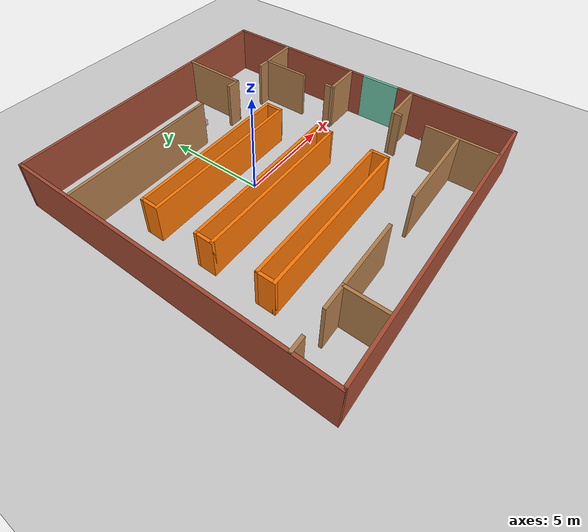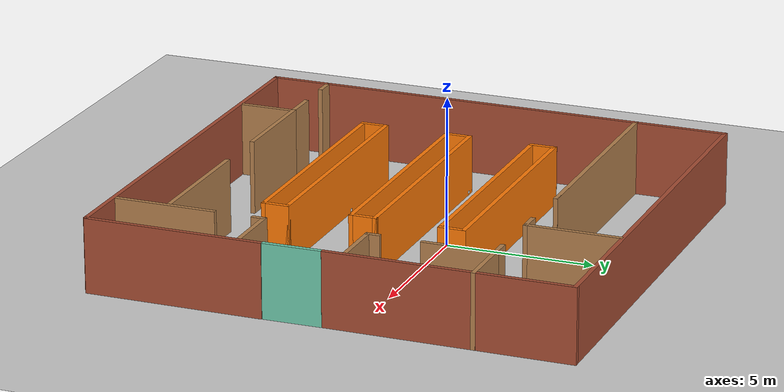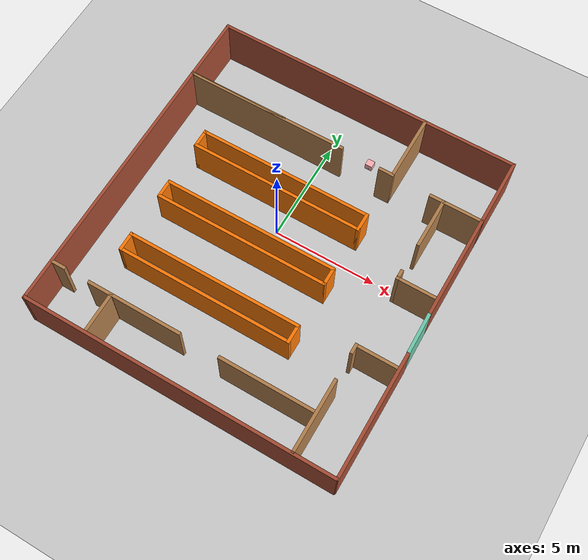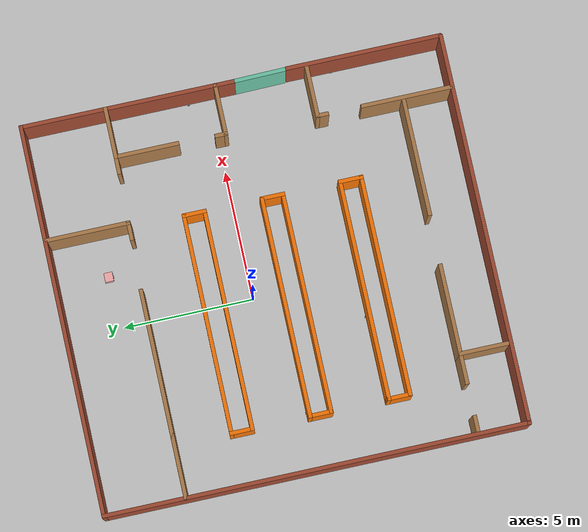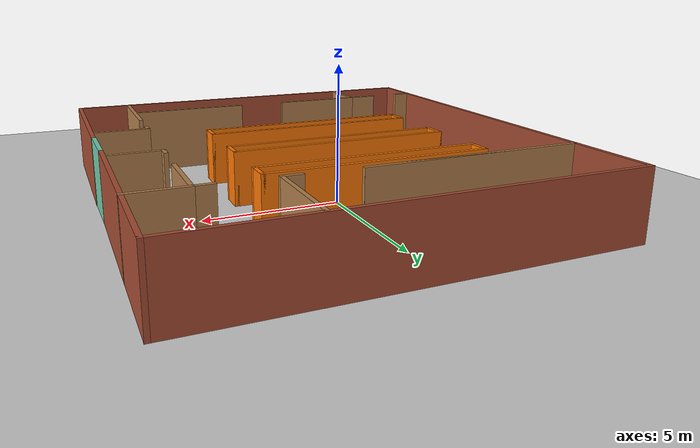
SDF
<sdf version="1.6">
 <world name="default">
  <light name="sun" type="directional">
   <pose>0 0 10 0 -0 0</pose>
   <diffuse>0.8 0.8 0.8 1</diffuse>
   <specular>0.1 0.1 0.1 1</specular>
   <attenuation>
    <range>1000</range>
    <constant>0.9</constant>
    <linear>0.01</linear>
    <quadratic>0.001</quadratic>
   </attenuation>
   <direction>-0.5 0.5 -1</direction>
  </light>
  <model name="ground_plane">
   <static>1</static>
   <link name="link">
    <collision name="collision">
     <geometry><plane><normal>0 0 1</normal><size>100 100</size></plane></geometry>
     <surface><friction><ode><mu>100</mu><mu2>50</mu2></ode></friction></surface>
    </collision>
    <visual name="visual">
     <cast_shadows>0</cast_shadows>
     <geometry><plane><normal>0 0 1</normal><size>100 100</size></plane></geometry>
     <material>
      <script><uri>file://media/materials/scripts/gazebo.material</uri><name>Gazebo/Grey</name></script>
     </material>
    </visual>
   </link>
  </model>
  <gravity>0 0 -9.8</gravity>
  <magnetic_field>6e-06 2.3e-05 -4.2e-05</magnetic_field>
  <atmosphere type="adiabatic"/>
  <physics name="default_physics" default="0" type="ode">
   <max_step_size>0.001</max_step_size>
   <real_time_factor>1</real_time_factor>
   <real_time_update_rate>1000</real_time_update_rate>
  </physics>
  <scene><ambient>0.4 0.4 0.4 1</ambient><background>0.7 0.7 0.7 1</background><shadows>1</shadows></scene>
  <spherical_coordinates>
   <surface_model>EARTH_WGS84</surface_model>
   <latitude_deg>0</latitude_deg>
   <longitude_deg>0</longitude_deg>
   <elevation>0</elevation>
   <heading_deg>0</heading_deg>
  </spherical_coordinates>
  <model name="Production_Product_0">
   <link name="link_1">
    <inertial>
     <mass>0.040791</mass>
     <inertia>
      <ixx>0.00078046</ixx>
      <ixy>0</ixy>
      <ixz>0</ixz>
      <iyy>0.00085048</iyy>
      <iyz>0</iyz>
      <izz>0.00079301</izz>
     </inertia>
    </inertial>
    <visual name="visual">
     <geometry><box><size>0.35 0.325 0.35</size></box></geometry>
     <material>
      <lighting>0</lighting>
      <script><uri>file://media/materials/scripts/gazebo.material</uri><name>Gazebo/Grey</name></script>
      <ambient>1 1 1 1</ambient>
      <diffuse>1 0.7 0.7 1</diffuse>
      <specular>1 0.01 0.01 1</specular>
      <emissive>0 0 0 1</emissive>
      <shader type="vertex"><normal_map>__default__</normal_map></shader>
     </material>
    </visual>
    <collision name="collision">
     <geometry><box><size>0.356293 0.326106 0.351072</size></box></geometry>
     <surface>
      <friction>
       <ode><mu>1</mu><mu2>1</mu2><fdir1>0 0 0</fdir1><slip1>0</slip1><slip2>0</slip2></ode>
       <torsional>
        <coefficient>1</coefficient>
        <patch_radius>0</patch_radius>
        <surface_radius>0</surface_radius>
        <use_patch_radius>1</use_patch_radius>
        <ode><slip>0</slip></ode>
       </torsional>
      </friction>
      <bounce><restitution_coefficient>0</restitution_coefficient><threshold>1e+06</threshold></bounce>
      <contact>
       <collide_without_contact>0</collide_without_contact>
       <collide_without_contact_bitmask>1</collide_without_contact_bitmask>
       <collide_bitmask>1</collide_bitmask>
       <ode>
        <soft_cfm>0</soft_cfm>
        <soft_erp>0.2</soft_erp>
        <kp>1e+13</kp>
        <kd>1</kd>
        <max_vel>0.01</max_vel>
        <min_depth>0</min_depth>
       </ode>
       <bullet>
        <split_impulse>1</split_impulse>
        <split_impulse_penetration_threshold>-0.01</split_impulse_penetration_threshold>
        <soft_cfm>0</soft_cfm>
        <soft_erp>0.2</soft_erp>
        <kp>1e+13</kp>
        <kd>1</kd>
       </bullet>
      </contact>
     </surface>
    </collision>
   </link>
   <static>0</static>
   <pose>1.99364 5.1749 0.175531 0 2.8e-05 -3.5e-05</pose>
  </model>
  <model name="warehouse_design">
   <pose>0.53888 -0.89784 0 0 -0 0</pose>
   <link name="Wall_104">
    <collision name="Wall_104_Collision">
     <geometry><box><size>3.5 0.15 2.5</size></box></geometry>
     <pose>0 0 1.25 0 -0 0</pose>
    </collision>
    <visual name="Wall_104_Visual">
     <pose>0 0 1.25 0 -0 0</pose>
     <geometry><box><size>3.5 0.15 2.5</size></box></geometry>
     <material>
      <script><uri>file://media/materials/scripts/gazebo.material</uri><name>Gazebo/Wood</name></script>
      <ambient>1 1 1 1</ambient>
     </material>
    </visual>
    <pose>-2.72514 -6.12727 0 0 -0 0</pose>
   </link>
   <link name="Wall_106">
    <collision name="Wall_106_Collision">
     <geometry><box><size>1.25 0.15 2.5</size></box></geometry>
     <pose>0 0 1.25 0 -0 0</pose>
    </collision>
    <visual name="Wall_106_Visual">
     <pose>0 0 1.25 0 -0 0</pose>
     <geometry><box><size>1.25 0.15 2.5</size></box></geometry>
     <material>
      <script><uri>file://media/materials/scripts/gazebo.material</uri><name>Gazebo/Wood</name></script>
      <ambient>1 1 1 1</ambient>
     </material>
    </visual>
    <pose>-4.95014 -6.12727 0 0 -0 3.14159</pose>
   </link>
   <link name="Wall_109">
    <collision name="Wall_109_Collision">
     <geometry><box><size>0.75 0.15 2.5</size></box></geometry>
     <pose>0 0 1.25 0 -0 0</pose>
    </collision>
    <visual name="Wall_109_Visual">
     <pose>0 0 1.25 0 -0 0</pose>
     <geometry><box><size>0.75 0.15 2.5</size></box></geometry>
     <material>
      <script><uri>file://media/materials/scripts/gazebo.material</uri><name>Gazebo/Wood</name></script>
      <ambient>1 1 1 1</ambient>
     </material>
    </visual>
    <pose>-7.12196 -6.12727 0 0 -0 0</pose>
   </link>
   <link name="Wall_14">
    <collision name="Wall_14_Collision">
     <geometry><box><size>8 0.15 2.5</size></box></geometry>
     <pose>0 0 1.25 0 -0 0</pose>
    </collision>
    <visual name="Wall_14_Visual">
     <pose>0 0 1.25 0 -0 0</pose>
     <geometry><box><size>8 0.15 2.5</size></box></geometry>
     <material>
      <script><uri>file://media/materials/scripts/gazebo.material</uri><name>Gazebo/Wood</name></script>
      <ambient>1 1 1 1</ambient>
     </material>
    </visual>
    <pose>-3.50629 4.9535 0 0 -0 0</pose>
   </link>
   <link name="Wall_2">
    <collision name="Wall_2_Collision">
     <geometry><box><size>15 0.15 2.5</size></box></geometry>
     <pose>0 0 1.25 0 -0 0</pose>
    </collision>
    <visual name="Wall_2_Visual">
     <pose>0 0 1.25 0 -0 0</pose>
     <geometry><box><size>15 0.15 2.5</size></box></geometry>
     <material>
      <script><uri>file://media/materials/scripts/gazebo.material</uri><name>Gazebo/Bricks</name></script>
      <ambient>1 1 1 1</ambient>
     </material>
    </visual>
    <pose>-0.024781 8.05 0 0 -0 3.14159</pose>
   </link>
   <link name="Wall_27">
    <collision name="Wall_27_Collision">
     <geometry><box><size>2 0.15 2.5</size></box></geometry>
     <pose>0 0 1.25 0 -0 0</pose>
    </collision>
    <visual name="Wall_27_Visual">
     <pose>0 0 1.25 0 -0 0</pose>
     <geometry><box><size>2 0.15 2.5</size></box></geometry>
     <material>
      <script><uri>file://media/materials/scripts/gazebo.material</uri><name>Gazebo/Wood</name></script>
      <ambient>1 1 1 1</ambient>
     </material>
    </visual>
    <pose>6.44544 0.615959 0 0 -0 3.14159</pose>
   </link>
   <link name="Wall_33">
    <collision name="Wall_33_Collision">
     <geometry><box><size>0.5 0.15 2.5</size></box></geometry>
     <pose>0 0 1.25 0 -0 0</pose>
    </collision>
    <visual name="Wall_33_Visual">
     <pose>0 0 1.25 0 -0 0</pose>
     <geometry><box><size>0.5 0.15 2.5</size></box></geometry>
     <material>
      <script><uri>file://media/materials/scripts/gazebo.material</uri><name>Gazebo/Wood</name></script>
      <ambient>1 1 1 1</ambient>
     </material>
    </visual>
    <pose>5.52044 0.790959 0 0 -0 1.5708</pose>
   </link>
   <link name="Wall_35">
    <collision name="Wall_35_Collision">
     <geometry><box><size>2 0.15 2.5</size></box></geometry>
     <pose>0 0 1.25 0 -0 0</pose>
    </collision>
    <visual name="Wall_35_Visual">
     <pose>0 0 1.25 0 -0 0</pose>
     <geometry><box><size>2 0.15 2.5</size></box></geometry>
     <material>
      <script><uri>file://media/materials/scripts/gazebo.material</uri><name>Gazebo/Wood</name></script>
      <ambient>1 1 1 1</ambient>
     </material>
    </visual>
    <pose>6.37548 -2.88205 0 0 -0 3.14159</pose>
   </link>
   <link name="Wall_39">
    <collision name="Wall_39_Collision">
     <geometry><box><size>3.5 0.15 2.5</size></box></geometry>
     <pose>0 0 1.25 0 -0 0</pose>
    </collision>
    <visual name="Wall_39_Visual">
     <pose>0 0 1.25 0 -0 0</pose>
     <geometry><box><size>3.5 0.15 2.5</size></box></geometry>
     <material>
      <script><uri>file://media/materials/scripts/gazebo.material</uri><name>Gazebo/Wood</name></script>
      <ambient>1 1 1 1</ambient>
     </material>
    </visual>
    <pose>5.45048 -6.29458 0 0 -0 1.5708</pose>
   </link>
   <link name="Wall_41">
    <collision name="Wall_41_Collision">
     <geometry><box><size>0.5 0.15 2.5</size></box></geometry>
     <pose>0 0 1.25 0 -0 0</pose>
    </collision>
    <visual name="Wall_41_Visual">
     <pose>0 0 1.25 0 -0 0</pose>
     <geometry><box><size>0.5 0.15 2.5</size></box></geometry>
     <material>
      <script><uri>file://media/materials/scripts/gazebo.material</uri><name>Gazebo/Wood</name></script>
      <ambient>1 1 1 1</ambient>
     </material>
    </visual>
    <pose>5.45048 -3.05705 0 0 0 -1.5708</pose>
   </link>
   <link name="Wall_45">
    <collision name="Wall_45_Collision">
     <geometry><box><size>3.25 0.15 2.5</size></box></geometry>
     <pose>0 0 1.25 0 -0 0</pose>
    </collision>
    <visual name="Wall_45_Visual">
     <pose>0 0 1.25 0 -0 0</pose>
     <geometry><box><size>3.25 0.15 2.5</size></box></geometry>
     <material>
      <script><uri>file://media/materials/scripts/gazebo.material</uri><name>Gazebo/Wood</name></script>
      <ambient>1 1 1 1</ambient>
     </material>
    </visual>
    <pose>3.01981 6.43052 0 0 0 -1.5708</pose>
   </link>
   <link name="Wall_49">
    <collision name="Wall_49_Collision">
     <geometry><box><size>0.75 0.15 2.5</size></box></geometry>
     <pose>0 0 1.25 0 -0 0</pose>
    </collision>
    <visual name="Wall_49_Visual">
     <pose>0 0 1.25 0 -0 0</pose>
     <geometry><box><size>0.75 0.15 2.5</size></box></geometry>
     <material>
      <script><uri>file://media/materials/scripts/gazebo.material</uri><name>Gazebo/Wood</name></script>
      <ambient>1 1 1 1</ambient>
     </material>
    </visual>
    <pose>2.71982 4.88052 0 0 -0 3.14159</pose>
   </link>
   <link name="Wall_51">
    <collision name="Wall_51_Collision">
     <geometry><box><size>6 0.15 2.5</size></box></geometry>
     <pose>0 0 1.25 0 -0 0</pose>
    </collision>
    <visual name="Wall_51_Visual">
     <pose>0 0 1.25 0 -0 0</pose>
     <geometry><box><size>6 0.15 2.5</size></box></geometry>
     <material>
      <script><uri>file://media/materials/scripts/gazebo.material</uri><name>Gazebo/Bricks</name></script>
      <ambient>1 1 1 1</ambient>
     </material>
    </visual>
    <pose>7.44978 -5.09082 0 0 0 -1.5708</pose>
   </link>
   <link name="Wall_53">
    <collision name="Wall_53_Collision">
     <geometry><box><size>16.25 0.15 2.5</size></box></geometry>
     <pose>0 0 1.25 0 -0 0</pose>
    </collision>
    <visual name="Wall_53_Visual">
     <pose>0 0 1.25 0 -0 0</pose>
     <geometry><box><size>16.25 0.15 2.5</size></box></geometry>
     <material>
      <script><uri>file://media/materials/scripts/gazebo.material</uri><name>Gazebo/Bricks</name></script>
      <ambient>1 1 1 1</ambient>
     </material>
    </visual>
    <pose>-7.44978 0 0 0 0 -1.5708</pose>
   </link>
   <link name="Wall_54">
    <collision name="Wall_54_Collision">
     <geometry><box><size>15 0.15 2.5</size></box></geometry>
     <pose>0 0 1.25 0 -0 0</pose>
    </collision>
    <visual name="Wall_54_Visual">
     <pose>0 0 1.25 0 -0 0</pose>
     <geometry><box><size>15 0.15 2.5</size></box></geometry>
     <material>
      <script><uri>file://media/materials/scripts/gazebo.material</uri><name>Gazebo/Bricks</name></script>
      <ambient>1 1 1 1</ambient>
     </material>
    </visual>
    <pose>-0.024781 -8.05 0 0 -0 0</pose>
   </link>
   <link name="Wall_74">
    <collision name="Wall_74_Collision">
     <geometry><box><size>2 0.15 2.5</size></box></geometry>
     <pose>0 0 1.25 0 -0 0</pose>
    </collision>
    <visual name="Wall_74_Visual">
     <pose>0 0 1.25 0 -0 0</pose>
     <geometry><box><size>2 0.15 2.5</size></box></geometry>
     <material>
      <script><uri>file://media/materials/scripts/gazebo.material</uri><name>Gazebo/Wood</name></script>
      <ambient>1 1 1 1</ambient>
     </material>
    </visual>
    <pose>6.47852 4.81963 0 0 -0 3.14159</pose>
   </link>
   <link name="Wall_77">
    <collision name="Wall_77_Collision">
     <geometry><box><size>2.5 0.15 2.5</size></box></geometry>
     <pose>0 0 1.25 0 -0 0</pose>
    </collision>
    <visual name="Wall_77_Visual">
     <pose>0 0 1.25 0 -0 0</pose>
     <geometry><box><size>2.5 0.15 2.5</size></box></geometry>
     <material>
      <script><uri>file://media/materials/scripts/gazebo.material</uri><name>Gazebo/Wood</name></script>
      <ambient>1 1 1 1</ambient>
     </material>
    </visual>
    <pose>5.55352 3.64463 0 0 0 -1.5708</pose>
   </link>
   <link name="Wall_9">
    <collision name="Wall_9_Collision">
     <geometry><box><size>8.25 0.15 2.5</size></box></geometry>
     <pose>0 0 1.25 0 -0 0</pose>
    </collision>
    <visual name="Wall_9_Visual">
     <pose>0 0 1.25 0 -0 0</pose>
     <geometry><box><size>8.25 0.15 2.5</size></box></geometry>
     <material>
      <script><uri>file://media/materials/scripts/gazebo.material</uri><name>Gazebo/Bricks</name></script>
      <ambient>1 1 1 1</ambient>
     </material>
    </visual>
    <pose>7.40022 4 0 0 0 -1.5708</pose>
   </link>
   <link name="Wall_91">
    <collision name="Wall_91_Collision">
     <geometry><box><size>4.5 0.15 2.5</size></box></geometry>
     <pose>0 0 1.25 0 -0 0</pose>
    </collision>
    <visual name="Wall_91_Visual">
     <pose>0 0 1.25 0 -0 0</pose>
     <geometry><box><size>4.5 0.15 2.5</size></box></geometry>
     <material>
      <script><uri>file://media/materials/scripts/gazebo.material</uri><name>Gazebo/Wood</name></script>
      <ambient>1 1 1 1</ambient>
     </material>
    </visual>
    <pose>3.125 -6.16133 0 0 -0 0</pose>
   </link>
   <link name="Wall_94">
    <collision name="Wall_94_Collision">
     <geometry><box><size>0.75 0.15 2.5</size></box></geometry>
     <pose>0 0 1.25 0 -0 0</pose>
    </collision>
    <visual name="Wall_94_Visual">
     <pose>0 0 1.25 0 -0 0</pose>
     <geometry><box><size>0.75 0.15 2.5</size></box></geometry>
     <material>
      <script><uri>file://media/materials/scripts/gazebo.material</uri><name>Gazebo/Wood</name></script>
      <ambient>1 1 1 1</ambient>
     </material>
    </visual>
    <pose>5.25352 4.81963 0 0 -0 3.14159</pose>
   </link>
   <link name="Wall_96">
    <collision name="Wall_96_Collision">
     <geometry><box><size>2 0.15 2.5</size></box></geometry>
     <pose>0 0 1.25 0 -0 0</pose>
    </collision>
    <visual name="Wall_96_Visual">
     <pose>0 0 1.25 0 -0 0</pose>
     <geometry><box><size>2 0.15 2.5</size></box></geometry>
     <material>
      <script><uri>file://media/materials/scripts/gazebo.material</uri><name>Gazebo/Wood</name></script>
      <ambient>1 1 1 1</ambient>
     </material>
    </visual>
    <pose>-4.40624 -7.0572 0 0 -0 1.5708</pose>
   </link>
   <static>1</static>
  </model>
  <model name="rackdemo">
   <pose>-0.7255 -1.4995 0 0 -0 0</pose>
   <link name="Wall_14">
    <collision name="Wall_14_Collision">
     <geometry><box><size>8.499 0.15 2</size></box></geometry>
     <pose>0 0 1 0 -0 0</pose>
    </collision>
    <visual name="Wall_14_Visual">
     <pose>0 0 1 0 -0 0</pose>
     <geometry><box><size>8.499 0.15 2</size></box></geometry>
     <material>
      <script><uri>file://media/materials/scripts/gazebo.material</uri><name>Gazebo/Grey</name></script>
      <ambient>0.996078 0.47451 0.0196078 1</ambient>
     </material>
    </visual>
    <pose>0 -0.3955 0 0 -0 0</pose>
   </link>
   <link name="Wall_16">
    <collision name="Wall_16_Collision">
     <geometry><box><size>8.499 0.15 2</size></box></geometry>
     <pose>0 0 1 0 -0 0</pose>
    </collision>
    <visual name="Wall_16_Visual">
     <pose>0 0 1 0 -0 0</pose>
     <geometry><box><size>8.499 0.15 2</size></box></geometry>
     <material>
      <script><uri>file://media/materials/scripts/gazebo.material</uri><name>Gazebo/Grey</name></script>
      <ambient>0.996078 0.47451 0.0196078 1</ambient>
     </material>
    </visual>
    <pose>0 -2.5915 0 0 -0 0</pose>
   </link>
   <link name="Wall_18">
    <collision name="Wall_18_Collision">
     <geometry><box><size>8.499 0.15 2</size></box></geometry>
     <pose>0 0 1 0 -0 0</pose>
    </collision>
    <visual name="Wall_18_Visual">
     <pose>0 0 1 0 -0 0</pose>
     <geometry><box><size>8.499 0.15 2</size></box></geometry>
     <material>
      <script><uri>file://media/materials/scripts/gazebo.material</uri><name>Gazebo/Grey</name></script>
      <ambient>0.996078 0.47451 0.0196078 1</ambient>
     </material>
    </visual>
    <pose>0 -3.4015 0 0 -0 0</pose>
   </link>
   <link name="Wall_24">
    <collision name="Wall_24_Collision">
     <geometry><box><size>8.499 0.15 2</size></box></geometry>
     <pose>0 0 1 0 -0 0</pose>
    </collision>
    <visual name="Wall_24_Visual">
     <pose>0 0 1 0 -0 0</pose>
     <geometry><box><size>8.499 0.15 2</size></box></geometry>
     <material>
      <script><uri>file://media/materials/scripts/gazebo.material</uri><name>Gazebo/Grey</name></script>
      <ambient>0.996078 0.47451 0.0196078 1</ambient>
     </material>
    </visual>
    <pose>0 0.4075 0 0 -0 0</pose>
   </link>
   <link name="Wall_26">
    <collision name="Wall_26_Collision">
     <geometry><box><size>8.499 0.15 2</size></box></geometry>
     <pose>0 0 1 0 -0 0</pose>
    </collision>
    <visual name="Wall_26_Visual">
     <pose>0 0 1 0 -0 0</pose>
     <geometry><box><size>8.499 0.15 2</size></box></geometry>
     <material>
      <script><uri>file://media/materials/scripts/gazebo.material</uri><name>Gazebo/Grey</name></script>
      <ambient>0.996078 0.47451 0.0196078 1</ambient>
     </material>
    </visual>
    <pose>0 2.6065 0 0 -0 0</pose>
   </link>
   <link name="Wall_28">
    <collision name="Wall_28_Collision">
     <geometry><box><size>8.499 0.15 2</size></box></geometry>
     <pose>0 0 1 0 -0 0</pose>
    </collision>
    <visual name="Wall_28_Visual">
     <pose>0 0 1 0 -0 0</pose>
     <geometry><box><size>8.499 0.15 2</size></box></geometry>
     <material>
      <script><uri>file://media/materials/scripts/gazebo.material</uri><name>Gazebo/Grey</name></script>
      <ambient>0.996078 0.47451 0.0196078 1</ambient>
     </material>
    </visual>
    <pose>0 3.4015 0 0 -0 0</pose>
   </link>
   <link name="Wall_36">
    <collision name="Wall_36_Collision">
     <geometry><box><size>0.945 0.15 2</size></box></geometry>
     <pose>0 0 1 0 -0 0</pose>
    </collision>
    <visual name="Wall_36_Visual">
     <pose>0 0 1 0 -0 0</pose>
     <geometry><box><size>0.945 0.15 2</size></box></geometry>
     <material>
      <script><uri>file://media/materials/scripts/gazebo.material</uri><name>Gazebo/Grey</name></script>
      <ambient>0.996078 0.47451 0.0196078 1</ambient>
     </material>
    </visual>
    <pose>-4.1745 3.004 0 0 0 -1.5708</pose>
   </link>
   <link name="Wall_38">
    <collision name="Wall_38_Collision">
     <geometry><box><size>0.953 0.15 2</size></box></geometry>
     <pose>0 0 1 0 -0 0</pose>
    </collision>
    <visual name="Wall_38_Visual">
     <pose>0 0 1 0 -0 0</pose>
     <geometry><box><size>0.953 0.15 2</size></box></geometry>
     <material>
      <script><uri>file://media/materials/scripts/gazebo.material</uri><name>Gazebo/Grey</name></script>
      <ambient>0.996078 0.47451 0.0196078 1</ambient>
     </material>
    </visual>
    <pose>-4.1745 0.006 0 0 0 -1.5708</pose>
   </link>
   <link name="Wall_40">
    <collision name="Wall_40_Collision">
     <geometry><box><size>0.96 0.15 2</size></box></geometry>
     <pose>0 0 1 0 -0 0</pose>
    </collision>
    <visual name="Wall_40_Visual">
     <pose>0 0 1 0 -0 0</pose>
     <geometry><box><size>0.96 0.15 2</size></box></geometry>
     <material>
      <script><uri>file://media/materials/scripts/gazebo.material</uri><name>Gazebo/Grey</name></script>
      <ambient>0.996078 0.47451 0.0196078 1</ambient>
     </material>
    </visual>
    <pose>-4.1745 -2.9965 0 0 0 -1.5708</pose>
   </link>
   <link name="Wall_42">
    <collision name="Wall_42_Collision">
     <geometry><box><size>0.945 0.15 2</size></box></geometry>
     <pose>0 0 1 0 -0 0</pose>
    </collision>
    <visual name="Wall_42_Visual">
     <pose>0 0 1 0 -0 0</pose>
     <geometry><box><size>0.945 0.15 2</size></box></geometry>
     <material>
      <script><uri>file://media/materials/scripts/gazebo.material</uri><name>Gazebo/Grey</name></script>
      <ambient>0.996078 0.47451 0.0196078 1</ambient>
     </material>
    </visual>
    <pose>4.1745 3.004 0 0 0 -1.5708</pose>
   </link>
   <link name="Wall_44">
    <collision name="Wall_44_Collision">
     <geometry><box><size>0.953 0.15 2</size></box></geometry>
     <pose>0 0 1 0 -0 0</pose>
    </collision>
    <visual name="Wall_44_Visual">
     <pose>0 0 1 0 -0 0</pose>
     <geometry><box><size>0.953 0.15 2</size></box></geometry>
     <material>
      <script><uri>file://media/materials/scripts/gazebo.material</uri><name>Gazebo/Grey</name></script>
      <ambient>0.996078 0.47451 0.0196078 1</ambient>
     </material>
    </visual>
    <pose>4.1745 0.006 0 0 0 -1.5708</pose>
   </link>
   <link name="Wall_46">
    <collision name="Wall_46_Collision">
     <geometry><box><size>0.96 0.15 2</size></box></geometry>
     <pose>0 0 1 0 -0 0</pose>
    </collision>
    <visual name="Wall_46_Visual">
     <pose>0 0 1 0 -0 0</pose>
     <geometry><box><size>0.96 0.15 2</size></box></geometry>
     <material>
      <script><uri>file://media/materials/scripts/gazebo.material</uri><name>Gazebo/Grey</name></script>
      <ambient>0.996078 0.47451 0.0196078 1</ambient>
     </material>
    </visual>
    <pose>4.1745 -2.9965 0 0 0 -1.5708</pose>
   </link>
   <static>1</static>
  </model>
  <model name="prowall">
   <pose>-2.9365 4.056 0 0 -0 0</pose>
   <link name="Wall_56">
    <collision name="Wall_56_Collision">
     <geometry><box><size>7.935 0.15 2.5</size></box></geometry>
     <pose>0 0 1.25 0 -0 0</pose>
    </collision>
    <visual name="Wall_56_Visual">
     <pose>0 0 1.25 0 -0 0</pose>
     <geometry><box><size>7.935 0.15 2.5</size></box></geometry>
     <material>
      <script><uri>file://media/materials/scripts/gazebo.material</uri><name>Gazebo/Wood</name></script>
      <ambient>1 1 1 1</ambient>
     </material>
    </visual>
   </link>
   <static>1</static>
  </model>
  <model name="aruco_marker_1">
   <pose>7.81222 0.819615 0.107193 0 -0 0</pose>
   <link name="box">
    <collision name="collision"><geometry><box><size>0.01 0.1 0.1</size></box></geometry></collision>
    <gravity>0</gravity>
    <visual name="visual">
     <geometry><box><size>0.01 0.1 0.1</size></box></geometry>
     <material>
      <script>
       <uri>model://aruco_marker_1/materials/scripts</uri>
       <uri>model://aruco_marker_1/materials/textures</uri>
       <name>ArucoVisualMarker1/Marker</name>
      </script>
      <ambient>1 1 1 1</ambient>
      <diffuse>1 1 1 1</diffuse>
      <specular>0 0 0 1</specular>
      <emissive>1 1 1 0</emissive>
      <shader type="vertex"><normal_map>__default__</normal_map></shader>
     </material>
    </visual>
   </link>
   <static>1</static>
  </model>
  <model name="aruco_marker_2">
   <pose>-1.5599 -3.97699 0.133593 0 0 -1.56918</pose>
   <link name="box">
    <collision name="collision"><geometry><box><size>0.01 0.1 0.1</size></box></geometry></collision>
    <gravity>0</gravity>
    <visual name="visual">
     <geometry><box><size>0.01 0.1 0.1</size></box></geometry>
     <material>
      <script>
       <uri>model://aruco_marker_2/materials/scripts</uri>
       <uri>model://aruco_marker_2/materials/textures</uri>
       <name>ArucoVisualMarker2/Marker</name>
      </script>
      <ambient>1 1 1 1</ambient>
      <diffuse>1 1 1 1</diffuse>
      <specular>0 0 0 1</specular>
      <emissive>1 1 1 0</emissive>
      <shader type="vertex"><normal_map>__default__</normal_map></shader>
     </material>
    </visual>
   </link>
   <static>1</static>
  </model>
  <model name="aruco_marker_3">
   <pose>7.89626 -4.73853 0.095046 0 -0 0</pose>
   <link name="box">
    <collision name="collision"><geometry><box><size>0.01 0.1 0.1</size></box></geometry></collision>
    <gravity>0</gravity>
    <visual name="visual">
     <geometry><box><size>0.01 0.1 0.1</size></box></geometry>
     <material>
      <script>
       <uri>model://aruco_marker_3/materials/scripts</uri>
       <uri>model://aruco_marker_3/materials/textures</uri>
       <name>ArucoVisualMarker3/Marker</name>
      </script>
      <ambient>1 1 1 1</ambient>
      <diffuse>1 1 1 1</diffuse>
      <specular>0 0 0 1</specular>
      <emissive>1 1 1 0</emissive>
      <shader type="vertex"><normal_map>__default__</normal_map></shader>
     </material>
    </visual>
   </link>
   <static>1</static>
  </model>
  <model name="aruco_marker_10">
   <pose>1.99138 4.99593 0.07789 0 0 -1.56064</pose>
   <link name="box">
    <collision name="collision"><geometry><box><size>0.01 0.1 0.1</size></box></geometry></collision>
    <gravity>0</gravity>
    <visual name="visual">
     <geometry><box><size>0.01 0.1 0.1</size></box></geometry>
     <material>
      <script>
       <uri>model://aruco_marker_10/materials/scripts</uri>
       <uri>model://aruco_marker_10/materials/textures</uri>
       <name>ArucoVisualMarker10/Marker</name>
      </script>
      <ambient>1 1 1 1</ambient>
      <diffuse>1 1 1 1</diffuse>
      <specular>0 0 0 1</specular>
      <emissive>1 1 1 0</emissive>
      <shader type="vertex"><normal_map>__default__</normal_map></shader>
     </material>
    </visual>
   </link>
   <static>1</static>
  </model>
  <model name="aruco_marker_11">
   <pose>-4.63793 -1.00231 0.116767 0 0 -1.57145</pose>
   <link name="box">
    <collision name="collision"><geometry><box><size>0.01 0.1 0.1</size></box></geometry></collision>
    <gravity>0</gravity>
    <visual name="visual">
     <geometry><box><size>0.01 0.1 0.1</size></box></geometry>
     <material>
      <script>
       <uri>model://aruco_marker_11/materials/scripts</uri>
       <uri>model://aruco_marker_11/materials/textures</uri>
       <name>ArucoVisualMarker11/Marker</name>
      </script>
      <ambient>1 1 1 1</ambient>
      <diffuse>1 1 1 1</diffuse>
      <specular>0 0 0 1</specular>
      <emissive>1 1 1 0</emissive>
      <shader type="vertex"><normal_map>__default__</normal_map></shader>
     </material>
    </visual>
   </link>
   <static>1</static>
  </model>
  <model name="door">
   <pose>7.957 -2.001 0 0 -0 0</pose>
   <link name="Wall_4">
    <collision name="Wall_4_Collision">
     <geometry><box><size>1.97 0.15 2.5</size></box></geometry>
     <pose>0 0 1.25 0 -0 0</pose>
    </collision>
    <visual name="Wall_4_Visual">
     <pose>0 0 1.25 0 -0 0</pose>
     <geometry><box><size>1.97 0.15 2.5</size></box></geometry>
     <material>
      <script><uri>file://media/materials/scripts/gazebo.material</uri><name>Gazebo/Grey</name></script>
      <ambient>0.435294 0.796078 0.67451 1</ambient>
     </material>
    </visual>
    <pose>0 0 0 0 0 -1.55431</pose>
   </link>
   <static>1</static>
  </model>
 </world>
</sdf>
